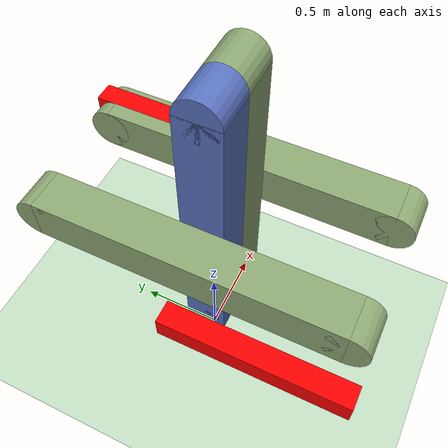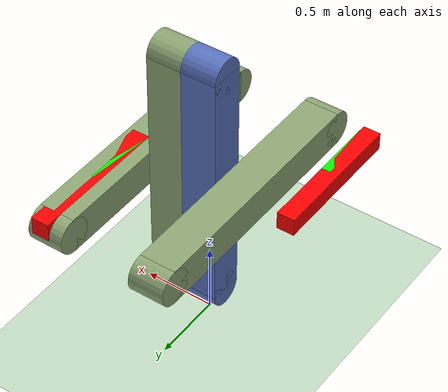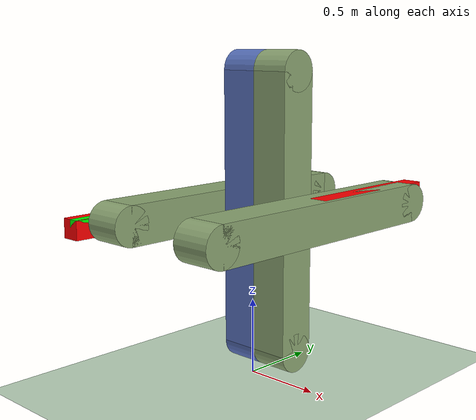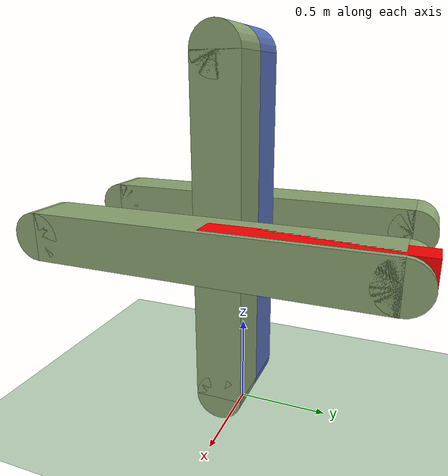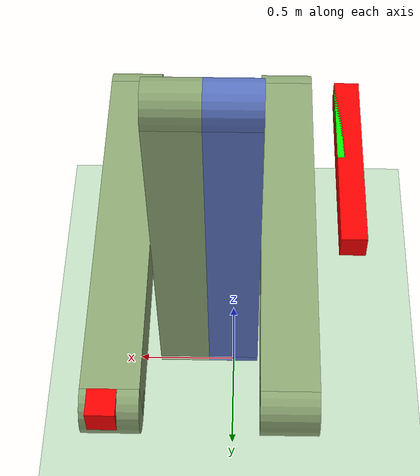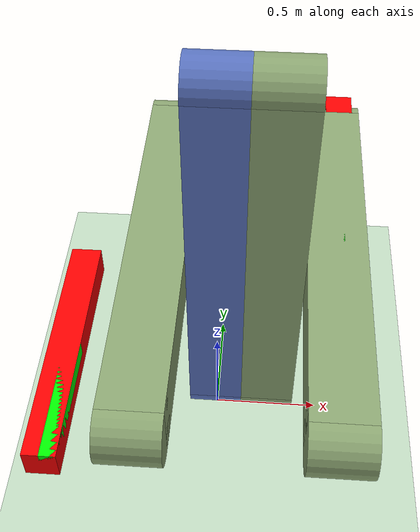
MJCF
<mujoco model="tars">

  <compiler angle="degree"/>

  <option timestep="0.005" integrator="RK4" gravity="0 0 -9.81"/>

  <default>
    <joint limited="true" damping="0.8" armature="0.01" stiffness="0"/>
    <geom condim="3" friction="1.2 0.005 0.0001" density="1000"
          contype="0" conaffinity="0"/>
    <motor ctrllimited="true" ctrlrange="-1 1" gear="120"/>
  </default>

  <worldbody>
    <light name="sun" pos="0 0 6" dir="0 0 -1" diffuse="1 1 1" specular="0.3 0.3 0.3"/>
    <geom name="floor" type="plane" size="50 50 0.1"
          rgba="0.75 0.85 0.75 1" contype="1" conaffinity="1"/>

    <!-- ── Middle Right ──────────────────────────────────────────────────────── -->
    <body name="middle_right" pos="0 0 1.1" euler="0 0 0">
      <freejoint name="root"/>
      <!-- Slot shape: central box + two half-cylinders capping the ±x ends -->
      <geom name="middle_geom_box" type="box" size="0.125 0.125 0.875"
            mass="2" rgba="0.35 0.45 0.75 1"
            contype="1" conaffinity="0"/>
      <geom name="middle_geom_cap_pos" type="cylinder" pos="0 0 0.875"
            size="0.125 0.125" euler="0 90 0"
            mass="1" rgba="0.35 0.45 0.75 1"
            contype="1" conaffinity="0"/>
      <geom name="middle_geom_cap_neg" type="cylinder" pos="0 0 -0.875"
            size="0.125 0.125" euler="0 90 0"
            mass="1" rgba="0.35 0.45 0.75 1"
            contype="1" conaffinity="0"/>

      <!-- ── Middle Left ──────────────────────────────────────────── -->
      <!-- pos: 0.25 m to the left (-x) of middle_right              -->
      <!-- joint pos: +0.25 x in middle_left's frame = middle_right's center -->
      <body name="middle_left" pos="0.25 0 0" euler="0 0 0" >
        <joint name="ud_mm" type="slide" axis="0 0 1" range="-50 50"/>
        <joint name="r_mm" type="hinge" axis="1 0 0" pos="0 0 0" range="-90 90"/>
        <geom name="ml_geom_box" type="box" size="0.125 0.125 0.875"
              mass="2" rgba="0.55 0.65 0.45 1"
              contype="1" conaffinity="0"/>
        <geom name="ml_geom_cap_pos" type="cylinder" pos="0 0 0.875"
              size="0.125 0.125" euler="0 90 0"
              mass="1" rgba="0.55 0.65 0.45 1"
              contype="1" conaffinity="0"/>
        <geom name="ml_geom_cap_neg" type="cylinder" pos="0 0 -0.875"
              size="0.125 0.125" euler="0 90 0"
              mass="1" rgba="0.55 0.65 0.45 1"
              contype="1" conaffinity="0"/>
      </body>

      <!-- ── Left ──────────────────────────────────────────── -->
      <!-- pos: 0.5 m to the left (-x) of middle_right              -->
      <!-- joint pos: +0.5 x in middle_left's frame = middle_right's center -->
      <body name="left" pos="0.5 0 0" euler="90 0 0" >
        <joint name="ud_lm" type="slide" axis="0 0 1" range="-50 50"/>
        <joint name="r_lm" type="hinge" axis="1 0 0" pos="0 0 0" range="-90 90"/>
        <geom name="l_geom_box" type="box" size="0.125 0.125 0.875"
              mass="2" rgba="0.55 0.65 0.45 1"
              contype="1" conaffinity="0"/>
        <geom name="l_geom_cap_pos" type="cylinder" pos="0 0 0.875"
              size="0.125 0.125" euler="0 90 0"
              mass="1" rgba="0.55 0.65 0.45 1"
              contype="1" conaffinity="0"/>
        <geom name="l_geom_cap_neg" type="cylinder" pos="0 0 -0.875"
              size="0.125 0.125" euler="0 90 0"
              mass="1" rgba="0.55 0.65 0.45 1"
              contype="1" conaffinity="0"/>

        <!-- ── Left Arm ──────────────────────────────────────────── -->
        <!-- pos: 0.28125 m to the left (-x) of middle_right              -->
        <!-- joint pos: -0.28125 x in middle_left's frame = middle_right's center -->
        <body name="left_arm_upper" pos="0.03125 0.0625 -0.5" euler="0 0 0" >
          <joint name="r_lu" type="hinge" axis="1 0 0" pos="0 0 0.5" range="-90 180"/>
          <geom name="lu_geom_box" type="box" size="0.0625 0.0625 0.5"
              mass="2" rgba="1 0 0 1"
              contype="1" conaffinity="0"/>
          <body name="left_arm_lower" pos="-0.03125 0.03125 0.25" euler="0 0 0" >
            <joint name="r_ll" type="hinge" axis="1 0 0" pos="0 0 0.25" range="-90 90"/>
            <geom name="ll_geom_box" type="box" size="0.03125 0.03125 0.25"
                mass="2" rgba="0 1 0 1"
                contype="1" conaffinity="0"/>
          </body>
        </body>

      </body>

      <!-- ── Right ──────────────────────────────────────────── -->
      <!-- pos: 0.25 m to the right (-x) of middle_right              -->
      <!-- joint pos: -0.25 x in middle_left's frame = middle_right's center -->
      <body name="right" pos="-0.25 0 0" euler="90 0 0" >
        <joint name="ud_rm" type="slide" axis="0 0 1" range="-50 50"/>
        <joint name="r_rm" type="hinge" axis="1 0 0" pos="0 0 0" range="-90 90"/>
        <geom name="r_geom_box" type="box" size="0.125 0.125 0.875"
              mass="2" rgba="0.55 0.65 0.45 1"
              contype="1" conaffinity="0"/>
        <geom name="r_geom_cap_pos" type="cylinder" pos="0 0 0.875"
              size="0.125 0.125" euler="0 90 0"
              mass="1" rgba="0.55 0.65 0.45 1"
              contype="1" conaffinity="0"/>
        <geom name="r_geom_cap_neg" type="cylinder" pos="0 0 -0.875"
              size="0.125 0.125" euler="0 90 0"
              mass="1" rgba="0.55 0.65 0.45 1"
              contype="1" conaffinity="0"/>

        <!-- ── Right Arm ──────────────────────────────────────────── -->
        <!-- pos: 0.28125 m to the left (-x) of middle_right              -->
        <!-- joint pos: -0.28125 x in middle_left's frame = middle_right's center -->
        <body name="right_arm_upper" pos="-0.3125 -0.0625 0.5" euler="0 0 0" >
          <joint name="r_ru" type="hinge" axis="1 0 0" pos="0 0 -0.5" range="-90 90"/>
          <geom name="ru_geom_box" type="box" size="0.0625 0.0625 0.5"
              mass="2" rgba="1 0 0 1"
              contype="1" conaffinity="0"/>
          <body name="right_arm_lower" pos="0.03125 0.03125 0.25" euler="0 0 0" >
            <joint name="r_rl" type="hinge" axis="1 0 0" pos="0 0 0.25" range="-90 90"/>
            <geom name="rl_geom_box" type="box" size="0.03125 0.03125 0.25"
                mass="2" rgba="0 1 0 1"
                contype="1" conaffinity="0"/>
          </body>
        </body>

      </body>

    </body>
  </worldbody>

  <actuator>
    <position name="ud_lm_pos" joint="ud_lm" kp="5"  ctrlrange="-50 50"/>
    <position name="ud_mm_pos" joint="ud_mm" kp="5"  ctrlrange="-50 50"/>
    <position name="ud_rm_pos" joint="ud_rm" kp="5"  ctrlrange="-50 50"/>
    <position name="r_lm_pos" joint="r_lm" kp="5"  ctrlrange="-90 90"/>
    <position name="r_mm_pos" joint="r_mm" kp="5"  ctrlrange="-90 90"/>
    <position name="r_rm_pos" joint="r_rm" kp="5" ctrlrange="-90 90"/>
    <position name="r_lu_pos" joint="r_lu" kp="5"  ctrlrange="-90 180"/>
    <position name="r_ru_pos" joint="r_ru" kp="5" ctrlrange="-90 90"/>
    <position name="r_ll_pos" joint="r_ll" kp="5" ctrlrange="-90 90"/>
    <position name="r_rl_pos" joint="r_rl" kp="5" ctrlrange="-90 90"/>
  </actuator>

</mujoco>
